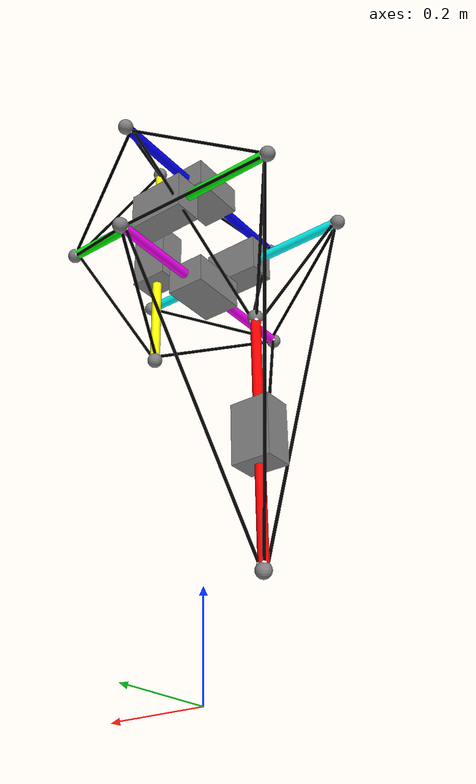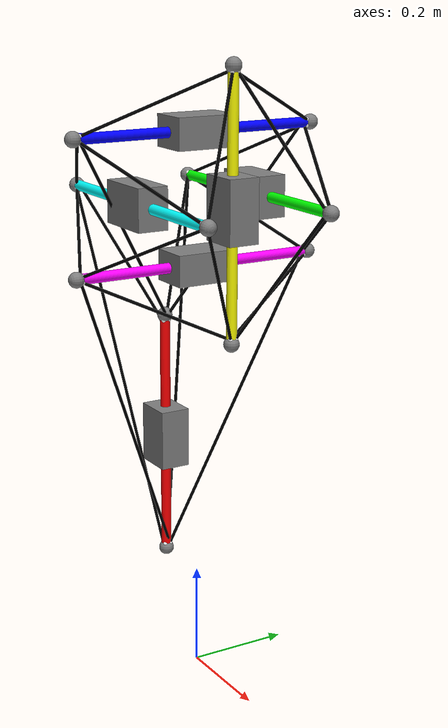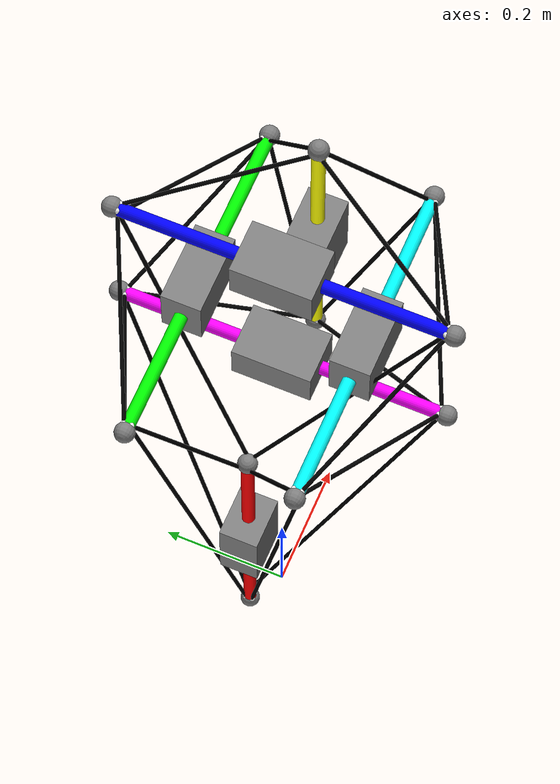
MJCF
<mujoco model="tensegrity">
  <option timestep="0.005" collision="predefined" cone="elliptic" impratio="100"/>
  <default>
    <site size="0.005" rgba="1 1 1 1"/>
    <default class="tendon_actuator">
      <general ctrllimited="true" ctrlrange="-16.0 0" dyntype="filter" dynprm="0.0179"/> <!-- for real2sim -->
    </default>
    <default class="tendon_spatial">
      <tendon damping="5" stiffness="0" frictionloss="0.5" limited="true" range="0.0 0.30"/>
    </default>
    <default class="tendon_spatial_static">
      <tendon damping="500" stiffness="0" frictionloss="0.5"/>
    </default>
  </default>
  <worldbody>
    <light pos="0 1 1" dir="0 -1 -1" diffuse="1 1 1"/>
    <camera name="robot_track_camera1" pos="0 -2 2" zaxis="0 -0.2 0.2" mode="trackcom" fovy="45"/>
    <camera name="robot_track_camera2" pos="0 -3 3" zaxis="0 -0.2 0.2" mode="trackcom" fovy="45"/>
    <camera name="robot_track_camera3" pos="0 0 3" euler="0 0 0" mode="trackcom" fovy="45"/>

      <!-- link -->
    <body name="link1" pos="-0.125 0 0.45" euler="0 0 0">
      <geom name="link1" type="cylinder" size="0.01 0.25" mass="0.06" rgba="1 0 0 1" pos="0 0 0"/>
      <body pos="0 0 0" name="actuator1">
        <geom name="actuator1" type="box" size="0.040 0.030 0.06" mass="0.6" pos="0 0 0"/>
      </body>
      <body pos="0 0 0.25" name="sphere_1t">
        <geom name="sphere_1t" type="sphere" size="0.015" mass="0.05" pos="0 0 0"/>
      </body>
        <body pos="0 0 -0.25" name="sphere_1b">
        <geom name="sphere_1b" type="sphere" size="0.015" mass="0.05" pos="0 0 0"/>
      </body>
      <joint name="link1" type="free"/>
      <site name="imu_link1" pos="0 0 0"/>
      <site name="link1_top" pos="0 0 0.225"/>
      <site name="link1_top1" pos="0.005 0.005 0.24"/>
      <site name="link1_top2" pos="-0.005 0.005 0.24"/>
      <site name="link1_top3" pos="-0.005 -0.005 0.24"/>
      <site name="link1_top4" pos="0.005 -0.005 0.24"/>
      <site name="link1_bottom1" pos="0.005 0.005 -0.24"/>
      <site name="link1_bottom2" pos="-0.005 0.005 -0.24"/>
      <site name="link1_bottom3" pos="-0.005 -0.005 -0.24"/>
      <site name="link1_bottom4" pos="0.005 -0.005 -0.24"/>
    </body>

    <body name="link2" pos="0.125 0 0.95" euler="0 0 0">
      <geom name="link2" type="cylinder" size="0.01 0.25" mass="0.06" rgba="1 1 0 1" pos="0 0 0"/>
      <body pos="0 0 0" name="actuator2">
        <geom name="actuator2" type="box" size="0.040 0.030 0.06" mass="0.6" pos="0 0 0"/>
      </body>
      <body pos="0 0 0.25" name="sphere_2t">
        <geom name="sphere_2t" type="sphere" size="0.015" mass="0.05" pos="0.0 0.0 0.0"/>
      </body>
      <body pos="0 0 -0.25" name="sphere_2b">
        <geom name="sphere_2b" type="sphere" size="0.015" mass="0.05" pos="0.0 0.0 0"/>
      </body>
      <joint name="link2" type="free"/>
      <site name="imu_link2" pos="0 0 0"/>
      <site name="link2_top1" pos="0.005 0.005 0.24"/>
      <site name="link2_top2" pos="-0.005 0.005 0.24"/>
      <site name="link2_top3" pos="-0.005 -0.005 0.24"/>
      <site name="link2_top4" pos="0.005 -0.005 0.24"/>
      <site name="link2_bottom1" pos="0.005 0.005 -0.24"/>
      <site name="link2_bottom2" pos="-0.005 0.005 -0.24"/>
      <site name="link2_bottom3" pos="-0.005 -0.005 -0.24"/>
      <site name="link2_bottom4" pos="0.005 -0.005 -0.24"/>
    </body>

    <body name="link3" pos="0 0.125 0.95" euler="0 90 0">
      <geom name="link3" type="cylinder" size="0.01 0.25" mass="0.06" rgba="0 1 0 1" pos="0 0 0"/>
      <body pos="0 0 0" name="actuator3">
        <geom name="actuator3" type="box" size="0.040 0.030 0.06" mass="0.6" pos="0 0 0"/>
      </body>
      <body pos="0 0 0.25" name="sphere_3t">
        <geom name="sphere_3t" type="sphere" size="0.015" mass="0.05" pos="0.0 0.0 0.0"/>
      </body>
      <body pos="0 0 -0.25" name="sphere_3b">
        <geom name="sphere_3b" type="sphere" size="0.015" mass="0.05" pos="0.0 0.0 0"/>
      </body>
      <joint name="link3" type="free"/>
      <site name="imu_link3" pos="0 0 0"/>
      <site name="link3_top1" pos="0.005 0.005 0.24"/>
      <site name="link3_top2" pos="-0.005 0.005 0.24"/>
      <site name="link3_top3" pos="-0.005 -0.005 0.24"/>
      <site name="link3_top4" pos="0.005 -0.005 0.24"/>
      <site name="link3_bottom1" pos="0.005 0.005 -0.24"/>
      <site name="link3_bottom2" pos="-0.005 0.005 -0.24"/>
      <site name="link3_bottom3" pos="-0.005 -0.005 -0.24"/>
      <site name="link3_bottom4" pos="0.005 -0.005 -0.24"/>
    </body>

    <body name="link4" pos="0 -0.125 0.95" euler="0 90 0">
      <geom name="link4" type="cylinder" size="0.01 0.25" mass="0.06" rgba="0 1 1 1" pos="0 0 0"/>
      <body pos="0 0 0" name="actuator4">
        <geom name="actuator4" type="box" size="0.040 0.030 0.06" mass="0.6" pos="0 0 0"/>
      </body>
      <body pos="0 0 0.25" name="sphere_4t">
        <geom name="sphere_4t" type="sphere" size="0.015" mass="0.05" pos="0.0 0.0 0.0"/>
      </body>
      <body pos="0 0 -0.25" name="sphere_4b">
        <geom name="sphere_4b" type="sphere" size="0.015" mass="0.05" pos="0.0 0.0 0"/>
      </body>
      <joint name="link4" type="free"/>
      <site name="imu_link4" pos="0 0 0"/>
      <site name="link4_top1" pos="0.005 0.005 0.24"/>
      <site name="link4_top2" pos="-0.005 0.005 0.24"/>
      <site name="link4_top3" pos="-0.005 -0.005 0.24"/>
      <site name="link4_top4" pos="0.005 -0.005 0.24"/>
      <site name="link4_bottom1" pos="0.005 0.005 -0.24"/>
      <site name="link4_bottom2" pos="-0.005 0.005 -0.24"/>
      <site name="link4_bottom3" pos="-0.005 -0.005 -0.24"/>
      <site name="link4_bottom4" pos="0.005 -0.005 -0.24"/>
    </body>

    <body name="link5" pos="0 0 1.075" euler="90 0 0">
      <geom name="link5" type="cylinder" size="0.01 0.25" mass="0.06" rgba="0 0 1 1" pos="0 0 0"/>
      <body pos="0 0 0" name="actuator5">
        <geom name="actuator5" type="box" size="0.040 0.030 0.06" mass="0.6" pos="0 0 0"/>
      </body>
      <body pos="0 0 0.25" name="sphere_5t">
        <geom name="sphere_5t" type="sphere" size="0.015" mass="0.05" pos="0.0 0.0 0.0"/>
      </body>
      <body pos="0 0 -0.25" name="sphere_5b">
        <geom name="sphere_5b" type="sphere" size="0.015" mass="0.05" pos="0.0 0.0 0"/>
      </body>
      <joint name="link5" type="free"/>
      <site name="imu_link5" pos="0 0 0"/>
      <site name="link5_top1" pos="0.005 0.005 0.24"/>
      <site name="link5_top2" pos="-0.005 0.005 0.24"/>
      <site name="link5_top3" pos="-0.005 -0.005 0.24"/>
      <site name="link5_top4" pos="0.005 -0.005 0.24"/>
      <site name="link5_bottom1" pos="0.005 0.005 -0.24"/>
      <site name="link5_bottom2" pos="-0.005 0.005 -0.24"/>
      <site name="link5_bottom3" pos="-0.005 -0.005 -0.24"/>
      <site name="link5_bottom4" pos="0.005 -0.005 -0.24"/>
    </body>

    <body name="link6" pos="0 0 0.825" euler="90 0 0">
      <geom name="link6" type="cylinder" size="0.01 0.25" mass="0.06" rgba="1 0 1 1" pos="0 0 0"/>
      <body pos="0 0 0" name="actuator6">
        <geom name="actuator6" type="box" size="0.040 0.030 0.06" mass="0.6" pos="0 0 0"/>
      </body>
      <body pos="0 0 0.25" name="sphere_6t">
        <geom name="sphere_6t" type="sphere" size="0.015" mass="0.05" pos="0.0 0.0 0.0"/>
      </body>
      <body pos="0 0 -0.25" name="sphere_6b">
        <geom name="sphere_6b" type="sphere" size="0.015" mass="0.05" pos="0.0 0.0 0"/>
      </body>
      <joint name="link6" type="free"/>
      <site name="imu_link6" pos="0 0 0"/>
      <site name="link6_top1" pos="0.005 0.005 0.24"/>
      <site name="link6_top2" pos="-0.005 0.005 0.24"/>
      <site name="link6_top3" pos="-0.005 -0.005 0.24"/>
      <site name="link6_top4" pos="0.005 -0.005 0.24"/>
      <site name="link6_bottom1" pos="0.005 0.005 -0.24"/>
      <site name="link6_bottom2" pos="-0.005 0.005 -0.24"/>
      <site name="link6_bottom3" pos="-0.005 -0.005 -0.24"/>
      <site name="link6_bottom4" pos="0.005 -0.005 -0.24"/>
    </body>

  </worldbody>

  <tendon>
    <!-- link1 -->
    <spatial name="link1t_3b" class="tendon_spatial" rgba="0 0 0 1">
      <site site="link1_top2"/>
      <site site="link3_bottom3"/>
    </spatial>
    <spatial name="link1t_4b" class="tendon_spatial" rgba="0 0 0 1">
      <site site="link1_top3"/>
      <site site="link4_bottom1"/>
    </spatial>
    <spatial name="link1b_3b" class="tendon_spatial" rgba="0 0 0 1">
      <site site="link1_bottom2"/>
      <site site="link3_bottom4"/>
    </spatial>
    <spatial name="link1b_4b" class="tendon_spatial" rgba="0 0 0 1">
      <site site="link1_bottom3"/>
      <site site="link4_bottom4"/>
    </spatial>
    <spatial name="link1b_6t" class="tendon_spatial" rgba="0 0 0 1">
      <site site="link1_bottom1"/>
      <site site="link6_top3"/>
    </spatial>
    <spatial name="link1b_6b" class="tendon_spatial" rgba="0 0 0 1">
      <site site="link1_bottom1"/>
      <site site="link6_bottom3"/>
    </spatial>
    <spatial name="link1t_5t" class="tendon_spatial" rgba="0 0 0 1">
      <site site="link1_top1"/>
      <site site="link5_top2"/>
    </spatial>
    <spatial name="link1t_5b" class="tendon_spatial" rgba="0 0 0 1">
      <site site="link1_top4"/>
      <site site="link5_bottom2"/>
    </spatial>

    <!-- link2 -->
    <spatial name="link2t_3t" class="tendon_spatial" rgba="0 0 0 1">
      <site site="link2_top1"/>
      <site site="link3_top3"/>
    </spatial>
    <spatial name="link2t_4t" class="tendon_spatial" rgba="0 0 0 1">
      <site site="link2_top4"/>
      <site site="link4_top2"/>
    </spatial>
    <spatial name="link2b_3t" class="tendon_spatial" rgba="0 0 0 1">
      <site site="link2_bottom1"/>
      <site site="link3_top4"/>
    </spatial>
    <spatial name="link2b_4t" class="tendon_spatial" rgba="0 0 0 1">
      <site site="link2_bottom4"/>
      <site site="link4_top1"/>
    </spatial>
    <spatial name="link2b_6t" class="tendon_spatial" rgba="0 0 0 1">
      <site site="link2_bottom3"/>
      <site site="link6_top4"/>
    </spatial>
    <spatial name="link2b_6b" class="tendon_spatial" rgba="0 0 0 1">
      <site site="link2_bottom2"/>
      <site site="link6_bottom4"/>
    </spatial>
    <spatial name="link2t_5t" class="tendon_spatial" rgba="0 0 0 1">
      <site site="link2_top3"/>
      <site site="link5_top1"/>
    </spatial>
    <spatial name="link2t_5b" class="tendon_spatial" rgba="0 0 0 1">
      <site site="link2_top2"/>
      <site site="link5_bottom1"/>
    </spatial>

    <!-- link3 -->
    <spatial name="link3t_5b" class="tendon_spatial" rgba="0 0 0 1">
      <site site="link3_top2"/>
      <site site="link5_bottom3"/>
    </spatial>
    <spatial name="link3b_5b" class="tendon_spatial" rgba="0 0 0 1">
      <site site="link3_bottom2"/>
      <site site="link5_bottom3"/>
    </spatial>
    <spatial name="link3t_6b" class="tendon_spatial" rgba="0 0 0 1">
      <site site="link3_top1"/>
      <site site="link6_bottom1"/>
    </spatial>
    <spatial name="link3b_6b" class="tendon_spatial" rgba="0 0 0 1">
      <site site="link3_bottom1"/>
      <site site="link6_bottom2"/>
    </spatial>

    <!-- link4 -->
    <spatial name="link4t_5t" class="tendon_spatial" rgba="0 0 0 1">
      <site site="link4_top3"/>
      <site site="link5_top4"/>
    </spatial>
    <spatial name="link4b_5t" class="tendon_spatial" rgba="0 0 0 1">
      <site site="link4_bottom3"/>
      <site site="link5_top3"/>
    </spatial>
    <spatial name="link4t_6t" class="tendon_spatial" rgba="0 0 0 1">
      <site site="link4_top4"/>
      <site site="link6_top1"/>
    </spatial>
    <spatial name="link4b_6t" class="tendon_spatial" rgba="0 0 0 1">
      <site site="link4_bottom4"/>
      <site site="link6_top2"/>
    </spatial>
  </tendon>

  <actuator>
    <!-- tention-controlled actuators-->
    <general name="link1t_3b" tendon="link1t_3b"  class="tendon_actuator"/>
    <general name="link1t_4b" tendon="link1t_4b"  class="tendon_actuator"/>
    <general name="link1b_3b" tendon="link1b_3b"  class="tendon_actuator"/>
    <general name="link1b_4b" tendon="link1b_4b"  class="tendon_actuator"/>
    <general name="link1b_6t" tendon="link1b_6t"  class="tendon_actuator"/>
    <general name="link1b_6b" tendon="link1b_6b"  class="tendon_actuator"/>
    <general name="link1t_5b" tendon="link1t_5b"  class="tendon_actuator"/>
    <general name="link1t_5t" tendon="link1t_5t"  class="tendon_actuator"/>
    <general name="link2t_4t" tendon="link2t_4t"  class="tendon_actuator"/>
    <general name="link2t_3t" tendon="link2t_3t"  class="tendon_actuator"/>
    <general name="link2b_3t" tendon="link2b_3t"  class="tendon_actuator"/>
    <general name="link2b_4t" tendon="link2b_4t"  class="tendon_actuator"/>
    <general name="link2b_6t" tendon="link2b_6t"  class="tendon_actuator"/>
    <general name="link2t_5t" tendon="link2t_5t"  class="tendon_actuator"/>
    <general name="link2b_6b" tendon="link2b_6b"  class="tendon_actuator"/>
    <general name="link2t_5b" tendon="link2t_5b"  class="tendon_actuator"/>
    <general name="link3t_5b" tendon="link3t_5b"  class="tendon_actuator"/>
    <general name="link3b_5b" tendon="link3b_5b"  class="tendon_actuator"/>
    <general name="link3t_6b" tendon="link3t_6b"  class="tendon_actuator"/>
    <general name="link3b_6b" tendon="link3b_6b"  class="tendon_actuator"/>
    <general name="link4t_5t" tendon="link4t_5t"  class="tendon_actuator"/>
    <general name="link4b_5t" tendon="link4b_5t"  class="tendon_actuator"/>
    <general name="link4t_6t" tendon="link4t_6t"  class="tendon_actuator"/>
    <general name="link4b_6t" tendon="link4b_6t"  class="tendon_actuator"/>

  </actuator>

  <sensor>
    <!-- IMUセンサーの定義 -->
    <accelerometer name="imu_acc_link1" site="imu_link1"/>
    <gyro name="imu_gyro_link1" site="imu_link1"/>

    <accelerometer name="imu_acc_link2" site="imu_link2"/>
    <gyro name="imu_gyro_link2" site="imu_link2"/>

    <accelerometer name="imu_acc_link3" site="imu_link3"/>
    <gyro name="imu_gyro_link3" site="imu_link3"/>

    <accelerometer name="imu_acc_link4" site="imu_link4"/>
    <gyro name="imu_gyro_link4" site="imu_link4"/>

    <accelerometer name="imu_acc_link5" site="imu_link5"/>
    <gyro name="imu_gyro_link5" site="imu_link5"/>

    <accelerometer name="imu_acc_link6" site="imu_link6"/>
    <gyro name="imu_gyro_link6" site="imu_link6"/>
  </sensor>

</mujoco>
